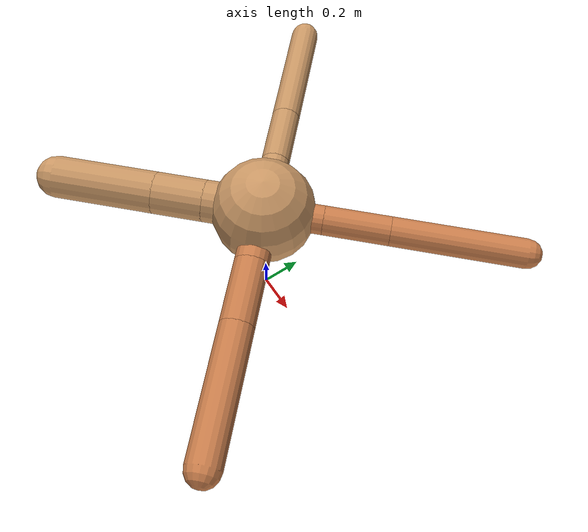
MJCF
<?xml version="1.0" ?>
<mujoco model="ant">

	<compiler angle="degree" coordinate="local" inertiafromgeom="true"/>

	<option integrator="RK4" timestep="0.01"/>

	<custom>

		<numeric data="0.0 0.0 0.55 1.0 0.0 0.0 0.0 0.0 1.0 0.0 -1.0 0.0 -1.0 0.0 1.0" name="init_qpos"/>

	</custom>

	<default>

		<joint armature="1" damping="1" limited="true"/>

		<geom conaffinity="0" condim="3" density="5.0" friction="1.5 0.1 0.1" margin="0.01" rgba="0.8 0.6 0.4 1"/>

	</default>

	<worldbody>

		<body name="torso" pos="0 0 0.75">

			<geom name="torso_geom" pos="0 0 0" size="0.24763439235224594" type="sphere"/>

			<!--joint armature="0" damping="0" limited="false" margin="0.01" name="root" pos="0 0 0" type="free"/-->

			<body name="front_left_leg" pos="0 0 0">

				<geom fromto="0 0 0 0.2 0.2 0" name="aux_1_geom" size="0.06937513939889349" type="capsule" rgba=".8 .5 .3 1"/>

				<body name="aux_1" pos="0.2 0.2 0">

					<joint axis="0 0 1" name="hip_1" pos="0.0 0.0 0.0" range="-40 40" type="hinge"/>

					<geom fromto="0 0 0 0.22032103192363733 0.22032103192363733 0" name="left_leg_geom" size="0.06937513939889349" type="capsule" rgba=".8 .5 .3 1"/>

					<body pos="0.22032103192363733 0.22032103192363733 0" name="front_left_foot">

						<joint axis="-1 1 0" name="ankle_1" pos="0.0 0.0 0.0" range="30 100" type="hinge"/>

						<geom fromto="0 0 0 0.44064206384727467 0.44064206384727467 0" name="left_ankle_geom" size="0.06937513939889349" type="capsule" rgba=".8 .5 .3 1"/>

					</body>

				</body>

			</body>

			<body name="front_right_leg" pos="0 0 0">

				<geom fromto="0 0 0 -0.2 0.2 0" name="aux_2_geom" size="0.06847278108490301" type="capsule"/>

				<body name="aux_2" pos="-0.2 0.2 0">

					<joint axis="0 0 1" name="hip_2" pos="0.0 0.0 0.0" range="-40 40" type="hinge"/>

					<geom fromto="0 0 0 -0.19430672390315284 0.19430672390315284 0" name="right_leg_geom" size="0.06847278108490301" type="capsule"/>

					<body pos="-0.19430672390315284 0.19430672390315284 0" name="front_right_foot">

						<joint axis="1 1 0" name="ankle_2" pos="0.0 0.0 0.0" range="-100 -30" type="hinge"/>

						<geom fromto="0 0 0 -0.3886134478063057 0.3886134478063057 0" name="right_ankle_geom" size="0.06847278108490301" type="capsule"/>

					</body>

				</body>

			</body>

			<body name="left_back_leg" pos="0 0 0">

				<geom fromto="0 0 0 -0.2 -0.2 0" name="aux_3_geom" size="0.10064356640515992" type="capsule"/>

				<body name="aux_3" pos="-0.2 -0.2 0">

					<joint axis="0 0 1" name="hip_3" pos="0.0 0.0 0.0" range="-40 40" type="hinge"/>

					<geom fromto="0 0 0 -0.17098518315907213 -0.17098518315907213 0" name="back_leg_geom" size="0.10064356640515992" type="capsule"/>

					<body pos="-0.17098518315907213 -0.17098518315907213 0" name="left_back_foot">

						<joint axis="-1 1 0" name="ankle_3" pos="0.0 0.0 0.0" range="-100 -30" type="hinge"/>

						<geom fromto="0 0 0 -0.34197036631814426 -0.34197036631814426 0" name="third_ankle_geom" size="0.10064356640515992" type="capsule"/>

					</body>

				</body>

			</body>

			<body name="right_back_leg" pos="0 0 0">

				<geom fromto="0 0 0 0.2 -0.2 0" name="aux_4_geom" size="0.08081073541350384" type="capsule" rgba=".8 .5 .3 1"/>

				<body name="aux_4" pos="0.2 -0.2 0">

					<joint axis="0 0 1" name="hip_4" pos="0.0 0.0 0.0" range="-40 40" type="hinge"/>

					<geom fromto="0 0 0 0.2180566916802621 -0.2180566916802621 0" name="rightback_leg_geom" size="0.08081073541350384" type="capsule" rgba=".8 .5 .3 1"/>

					<body pos="0.2180566916802621 -0.2180566916802621 0" name="right_back_foot">

						<joint axis="1 1 0" name="ankle_4" pos="0.0 0.0 0.0" range="30 100" type="hinge"/>

						<geom fromto="0 0 0 0.4361133833605242 -0.4361133833605242 0" name="fourth_ankle_geom" size="0.08081073541350384" type="capsule" rgba=".8 .5 .3 1"/>

					</body>

				</body>

			</body>

		</body>

	</worldbody>

	<actuator>

		<motor ctrllimited="true" ctrlrange="-1.0 1.0" joint="hip_4" gear="150"/>

		<motor ctrllimited="true" ctrlrange="-1.0 1.0" joint="ankle_4" gear="150"/>

		<motor ctrllimited="true" ctrlrange="-1.0 1.0" joint="hip_1" gear="150"/>

		<motor ctrllimited="true" ctrlrange="-1.0 1.0" joint="ankle_1" gear="150"/>

		<motor ctrllimited="true" ctrlrange="-1.0 1.0" joint="hip_2" gear="150"/>

		<motor ctrllimited="true" ctrlrange="-1.0 1.0" joint="ankle_2" gear="150"/>

		<motor ctrllimited="true" ctrlrange="-1.0 1.0" joint="hip_3" gear="150"/>

		<motor ctrllimited="true" ctrlrange="-1.0 1.0" joint="ankle_3" gear="150"/>

	</actuator>

</mujoco>
